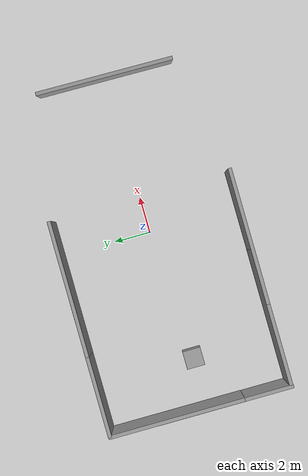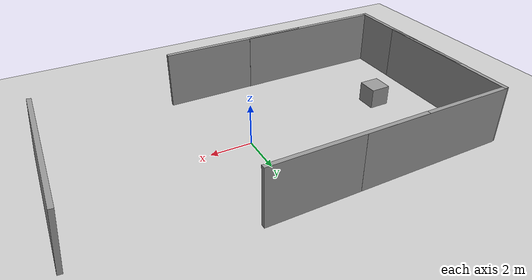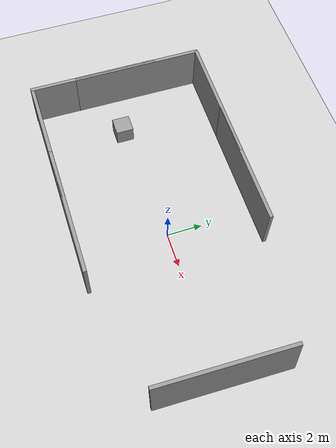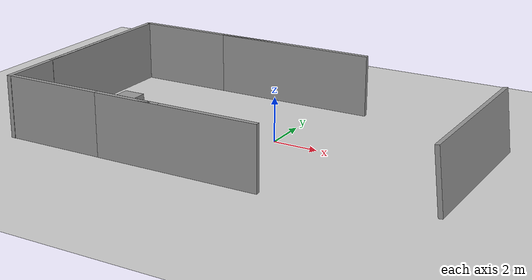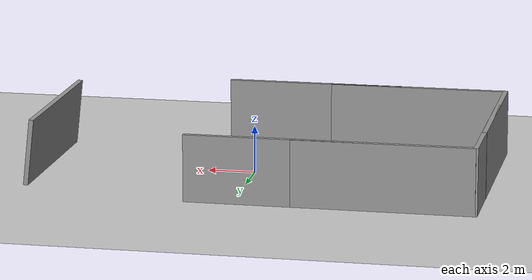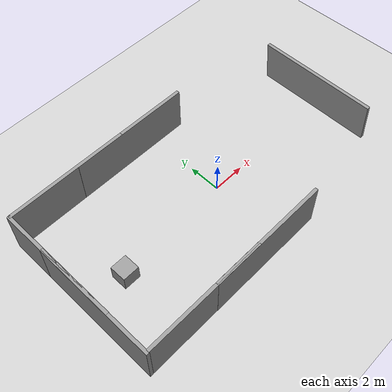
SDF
<sdf version="1.6">
 <world name="default">
  <light name="sun" type="directional">
   <pose>0 0 10 0 -0 0</pose>
   <diffuse>0.8 0.8 0.8 1</diffuse>
   <specular>0.1 0.1 0.1 1</specular>
   <attenuation>
    <range>1000</range>
    <constant>0.9</constant>
    <linear>0.01</linear>
    <quadratic>0.001</quadratic>
   </attenuation>
   <direction>-0.5 0.5 -1</direction>
  </light>
  <model name="ground_plane">
   <static>1</static>
   <link name="link">
    <collision name="collision">
     <geometry><plane><normal>0 0 1</normal><size>100 100</size></plane></geometry>
     <surface><friction><ode><mu>100</mu><mu2>50</mu2></ode></friction></surface>
    </collision>
    <visual name="visual">
     <cast_shadows>0</cast_shadows>
     <geometry><plane><normal>0 0 1</normal><size>100 100</size></plane></geometry>
     <material>
      <script><uri>file://media/materials/scripts/gazebo.material</uri><name>Gazebo/Grey</name></script>
     </material>
    </visual>
   </link>
  </model>
  <gravity>0 0 -9.8</gravity>
  <magnetic_field>6e-06 2.3e-05 -4.2e-05</magnetic_field>
  <atmosphere type="adiabatic"/>
  <physics name="default_physics" default="0" type="ode">
   <max_step_size>0.001</max_step_size>
   <real_time_factor>1</real_time_factor>
   <real_time_update_rate>1000</real_time_update_rate>
  </physics>
  <scene><ambient>0.4 0.4 0.4 1</ambient><background>0.7 0.7 0.7 1</background><shadows>1</shadows></scene>
  <spherical_coordinates>
   <surface_model>EARTH_WGS84</surface_model>
   <latitude_deg>0</latitude_deg>
   <longitude_deg>0</longitude_deg>
   <elevation>0</elevation>
   <heading_deg>0</heading_deg>
  </spherical_coordinates>
  <model name="grey_wall">
   <static>1</static>
   <link name="link">
    <pose>0 0 1.4 0 -0 0</pose>
    <collision name="collision"><geometry><box><size>7.5 0.2 2.8</size></box></geometry></collision>
    <visual name="visual">
     <cast_shadows>0</cast_shadows>
     <geometry><box><size>7.5 0.2 2.8</size></box></geometry>
     <material>
      <script>
       <uri>model://grey_wall/materials/scripts</uri>
       <uri>model://grey_wall/materials/textures</uri>
       <name>vrc/grey_wall</name>
      </script>
     </material>
    </visual>
   </link>
   <pose>-1.68756 -5.01578 0 0 -0 0</pose>
  </model>
  <model name="grey_wall_clone">
   <static>1</static>
   <link name="link">
    <pose>0 0 1.4 0 -0 0</pose>
    <collision name="collision"><geometry><box><size>7.5 0.2 2.8</size></box></geometry></collision>
    <visual name="visual">
     <cast_shadows>0</cast_shadows>
     <geometry><box><size>7.5 0.2 2.8</size></box></geometry>
     <material>
      <script>
       <uri>model://grey_wall/materials/scripts</uri>
       <uri>model://grey_wall/materials/textures</uri>
       <name>vrc/grey_wall</name>
      </script>
     </material>
    </visual>
   </link>
   <pose>-6.14599 -5.0119 0 0 -0 0</pose>
  </model>
  <model name="grey_wall_clone_0">
   <static>1</static>
   <link name="link">
    <pose>0 0 1.4 0 -0 0</pose>
    <collision name="collision"><geometry><box><size>7.5 0.2 2.8</size></box></geometry></collision>
    <visual name="visual">
     <cast_shadows>0</cast_shadows>
     <geometry><box><size>7.5 0.2 2.8</size></box></geometry>
     <material>
      <script>
       <uri>model://grey_wall/materials/scripts</uri>
       <uri>model://grey_wall/materials/textures</uri>
       <name>vrc/grey_wall</name>
      </script>
     </material>
    </visual>
   </link>
   <pose>-1.78005 4.97861 0 0 -0 0</pose>
  </model>
  <model name="grey_wall_clone_0_clone">
   <static>1</static>
   <link name="link">
    <pose>0 0 1.4 0 -0 0</pose>
    <collision name="collision"><geometry><box><size>7.5 0.2 2.8</size></box></geometry></collision>
    <visual name="visual">
     <cast_shadows>0</cast_shadows>
     <geometry><box><size>7.5 0.2 2.8</size></box></geometry>
     <material>
      <script>
       <uri>model://grey_wall/materials/scripts</uri>
       <uri>model://grey_wall/materials/textures</uri>
       <name>vrc/grey_wall</name>
      </script>
     </material>
    </visual>
   </link>
   <pose>-6.18691 4.98106 0 0 -0 0</pose>
  </model>
  <model name="grey_wall_clone_clone">
   <static>1</static>
   <link name="link">
    <pose>0 0 1.4 0 -0 0</pose>
    <collision name="collision"><geometry><box><size>7.5 0.2 2.8</size></box></geometry></collision>
    <visual name="visual">
     <cast_shadows>0</cast_shadows>
     <geometry><box><size>7.5 0.2 2.8</size></box></geometry>
     <material>
      <script>
       <uri>model://grey_wall/materials/scripts</uri>
       <uri>model://grey_wall/materials/textures</uri>
       <name>vrc/grey_wall</name>
      </script>
     </material>
    </visual>
   </link>
   <pose>-9.93851 1.30905 0 0 0 -1.57369</pose>
  </model>
  <model name="grey_wall_clone_clone_clone">
   <static>1</static>
   <link name="link">
    <pose>0 0 1.4 0 -0 0</pose>
    <collision name="collision"><geometry><box><size>7.5 0.2 2.8</size></box></geometry></collision>
    <visual name="visual">
     <cast_shadows>0</cast_shadows>
     <geometry><box><size>7.5 0.2 2.8</size></box></geometry>
     <material>
      <script>
       <uri>model://grey_wall/materials/scripts</uri>
       <uri>model://grey_wall/materials/textures</uri>
       <name>vrc/grey_wall</name>
      </script>
     </material>
    </visual>
   </link>
   <pose>-9.95362 -1.37685 0 0 0 -1.57369</pose>
  </model>
  <model name="unit_box_3">
   <pose>-7.31266 -0.424029 0.499995 1e-05 -0 0</pose>
   <link name="link">
    <inertial>
     <mass>1</mass>
     <inertia>
      <ixx>0.166667</ixx>
      <ixy>0</ixy>
      <ixz>0</ixz>
      <iyy>0.166667</iyy>
      <iyz>0</iyz>
      <izz>0.166667</izz>
     </inertia>
    </inertial>
    <collision name="collision"><geometry><box><size>1 1 1</size></box></geometry></collision>
    <visual name="visual">
     <geometry><box><size>1 1 1</size></box></geometry>
     <material>
      <script><name>Gazebo/Grey</name><uri>file://media/materials/scripts/gazebo.material</uri></script>
     </material>
    </visual>
   </link>
  </model>
  <model name="grey_wall_0">
   <static>1</static>
   <link name="link">
    <pose>0 0 1.4 0 -0 0</pose>
    <collision name="collision"><geometry><box><size>7.5 0.2 2.8</size></box></geometry></collision>
    <visual name="visual">
     <cast_shadows>0</cast_shadows>
     <geometry><box><size>7.5 0.2 2.8</size></box></geometry>
     <material>
      <script>
       <uri>model://grey_wall/materials/scripts</uri>
       <uri>model://grey_wall/materials/textures</uri>
       <name>vrc/grey_wall</name>
      </script>
     </material>
    </visual>
   </link>
   <pose>8.87954 0.038815 -3e-06 -0.107002 -0 1.55376</pose>
  </model>
 </world>
</sdf>
